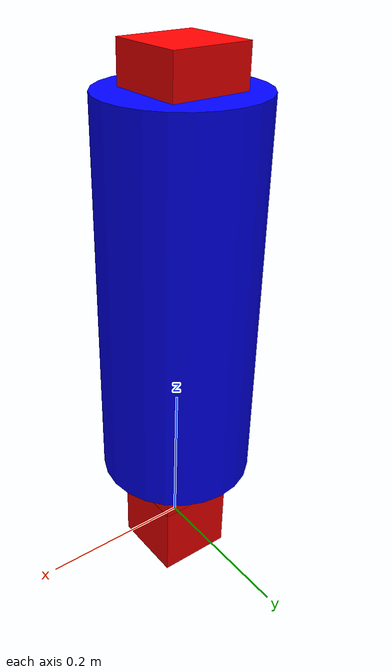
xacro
<?xml version="1.0"?>
	<!-- XACRO is actually URDF with additional capabilities for thinks like macros -->
	<robot name="basic" xmlns:xacro="http://www.ros.org/wiki/xacro">

	<!-- Variables we can reuse-->
	<xacro:property name="height" value="0.5" />
	<xacro:property name="radius" value="0.1" />
	<xacro:property name="elevation" value="0.1" />
	<xacro:property name="inertia" value="50" />
	<xacro:property name="camera_size" value="0.1" />
	<xacro:property name="M_PI" value="3.14159265358979323846264338327950288" />

	<material name="chassis_color">
		<color rgba="0 0 1 1"/>
	</material>

	<material name="camera_color">
		<color rgba="1 0 0 1"/>
	</material>

	<!-- This is the main robot model -->
	<link name="base_link">
		<visual>
		 <origin xyz="0 0 ${height/2 + elevation}" rpy="0 0 0"/>
		  <geometry>
		    <cylinder length="${height}" radius="${radius}"/>
		  </geometry>
		   <material name="chassis_color"/>
		</visual>

		<collision>
		  <origin xyz="0 0 ${height/2 + elevation}" rpy="0 0 0"/>
		  <geometry>
		    <cylinder length="${height}" radius="${radius}"/>
		  </geometry>
		</collision>

		<inertial>
		  <origin xyz="0 0 ${height/2}" rpy="0 0 0"/>
		  <mass value="1"/>
		  <inertia
		    ixx="${inertia}" ixy="0.0" ixz="0.0"
		    iyy="${inertia}" iyz="0.0"
		    izz="${inertia}"/>
		</inertial>
  </link>

 <!-- The navigation camera -->
  <joint name="camera_joint" type="fixed">
    <axis xyz="0 1 0" />
    <origin xyz="0 0 ${height + elevation}" rpy="0 0 0"/>
    <parent link="base_link"/>
    <child link="camera"/>
  </joint>

  <!-- Camera -->
  <link name="camera">
    <collision>
      <origin xyz="0 0 0" rpy="0 0 0"/>
      <geometry>
    	<box size="${camera_size} ${camera_size} ${camera_size}"/>
      </geometry>
    </collision>

    <visual>
      <origin xyz="0 0 0" rpy="0 0 0"/>
      <geometry>
    	<box size="${camera_size} ${camera_size} ${camera_size}"/>
      </geometry>
      <material name="camera_color"/>
    </visual>

    <inertial>
      <mass value="1e-5" />
      <origin xyz="0 0 0" rpy="0 0 0"/>
      <inertia ixx="1e-6" ixy="0" ixz="0" iyy="1e-6" iyz="0" izz="1e-6" />
    </inertial>
  </link>

   <!-- The depth camera -->
  <joint name="depth_camera_joint" type="fixed">
    <axis xyz="0 1 0" />
    <origin xyz="0 0 ${camera_size}" rpy="0 0 0"/>
    <parent link="base_link"/>
    <child link="depth_camera"/>
  </joint>

  <!-- Depth Camera -->
  <link name="depth_camera">
    <collision>
      <origin xyz="0 0 0" rpy="0 0 0"/>
      <geometry>
    	<box size="${camera_size} ${camera_size} ${camera_size}"/>
      </geometry>
    </collision>

    <visual>
      <origin xyz="0 0 0" rpy="0 0 0"/>
      <geometry>
    	<box size="${camera_size} ${camera_size} ${camera_size}"/>
      </geometry>
      <material name="camera_color"/>
    </visual>

    <inertial>
      <mass value="1e-5" />
      <origin xyz="0 0 0" rpy="0 0 0"/>
      <inertia ixx="1e-6" ixy="0" ixz="0" iyy="1e-6" iyz="0" izz="1e-6" />
    </inertial>
  </link>

   <!-- The laser -->
  <joint name="laser_joint" type="fixed">
    <axis xyz="0 1 0" />
    <origin xyz="0 0 0" rpy="0 0 0"/>
    <parent link="base_link"/>
    <child link="laser_link"/>
  </joint>

  <!-- Depth Camera -->
  <link name="laser_link">
    <collision>
      <origin xyz="0 0 0" rpy="0 0 0"/>
      <geometry>
    	<box size="${camera_size} ${camera_size} ${camera_size}"/>
      </geometry>
    </collision>

    <visual>
      <origin xyz="0 0 0" rpy="0 0 0"/>
      <geometry>
    	<box size="${camera_size} ${camera_size} ${camera_size}"/>
      </geometry>
      <material name="camera_color"/>
    </visual>

    <inertial>
      <mass value="1e-5" />
      <origin xyz="0 0 0" rpy="0 0 0"/>
      <inertia ixx="1e-6" ixy="0" ixz="0" iyy="1e-6" iyz="0" izz="1e-6" />
    </inertial>
  </link>

  <!-- lets us move the robot around the sim using the navstack commands -->
  <gazebo>
    <plugin name="object_controller" filename="libgazebo_ros_planar_move.so">
      <commandTopic>cmd_vel</commandTopic>
      <odometryTopic>odom</odometryTopic>
      <odometryFrame>odom</odometryFrame>
      <odometryRate>30.0</odometryRate>
      <robotBaseFrame>base_link</robotBaseFrame>
    </plugin>
  </gazebo>

   <!-- Camera Plugin -->
  <gazebo reference="camera">
    <sensor type="camera" name="camera1"> <!-- can be any name, but must be unique -->
      <update_rate>30.0</update_rate>
      <camera name="head">
        <horizontal_fov>1.3962634</horizontal_fov>
        <image>
          <width>800</width>
          <height>800</height>
          <format>R8G8B8</format>
        </image>
        <clip>
          <near>0.02</near>
          <far>300</far>
        </clip>
        <noise>
          <type>gaussian</type>
          <!-- Noise is sampled independently per pixel on each frame.
               That pixel's noise value is added to each of its color
               channels, which at that point lie in the range [0,1]. -->
          <mean>0.0</mean>
          <stddev>0.007</stddev>
        </noise>
      </camera>
      <plugin name="camera_controller" filename="libgazebo_ros_camera.so">
        <alwaysOn>true</alwaysOn>
        <updateRate>30.0</updateRate>
        <cameraName>basic/camera1</cameraName> <!-- will set name space of topics -->
        <imageTopicName>image_raw</imageTopicName>
        <cameraInfoTopicName>camera_info</cameraInfoTopicName>
        <frameName>camera</frameName> <!-- transform link -->
        <hackBaseline>0.07</hackBaseline>
        <distortionK1>0.0</distortionK1>
        <distortionK2>0.0</distortionK2>
        <distortionK3>0.0</distortionK3>
        <distortionT1>0.0</distortionT1>
        <distortionT2>0.0</distortionT2>
      </plugin>
    </sensor>
  </gazebo>

  <!-- Depth camera sensor -->

  <!-- hokuyo -->
  <gazebo reference="laser_link">
    <sensor type="ray" name="head_hokuyo_sensor">
      <pose>0 0 0 0 0 0</pose>
      <visualize>true</visualize>
      <update_rate>30</update_rate>
      <ray>
        <scan>
          <horizontal>
            <samples>720</samples>
            <resolution>1</resolution>
            <min_angle>-1.570796</min_angle>
            <max_angle>1.570796</max_angle>
          </horizontal>
        </scan>
        <range>
          <min>0.10</min>
          <max>30.0</max>
          <resolution>0.01</resolution>
        </range>
        <noise>
          <type>gaussian</type>
          <mean>0.0</mean>
          <stddev>0.01</stddev>
        </noise>
      </ray>
      <plugin name="gazebo_ros_head_hokuyo_controller" filename="libgazebo_ros_laser.so">
        <topicName>/simulation/laser/scan</topicName>
        <frameName>laser_link</frameName>
      </plugin>
    </sensor>
  </gazebo>

</robot>
